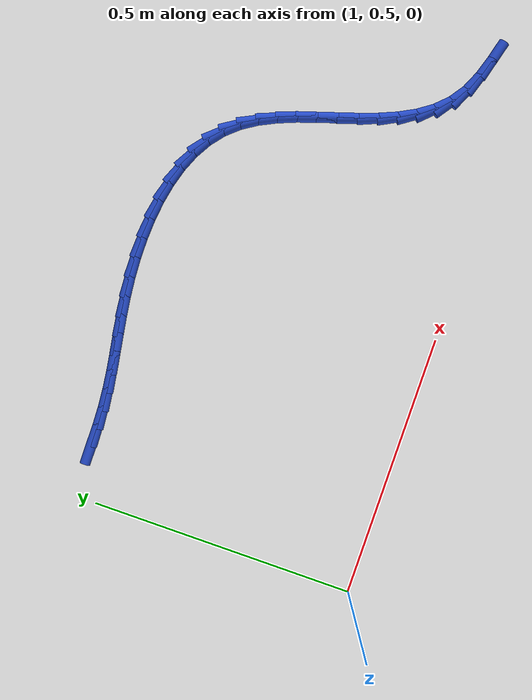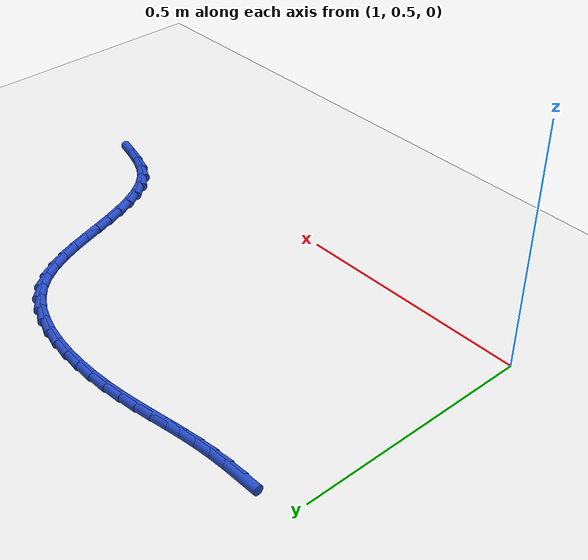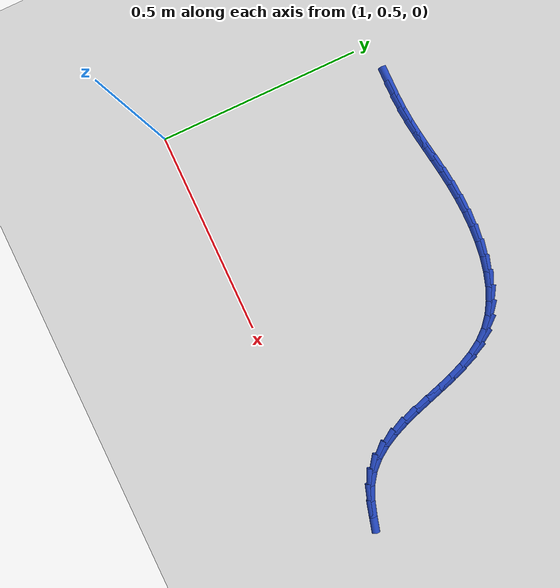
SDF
<sdf version="1.6">
 <world name="default">
  <model name="ground_plane">
   <static>1</static>
   <link name="link">
    <collision name="collision">
     <geometry><plane><normal>0 0 1</normal><size>100 100</size></plane></geometry>
     <surface><friction><ode><mu>100</mu><mu2>50</mu2></ode></friction></surface>
    </collision>
    <visual name="visual">
     <cast_shadows>0</cast_shadows>
     <geometry><plane><normal>0 0 1</normal><size>100 100</size></plane></geometry>
     <material>
      <script><uri>file://media/materials/scripts/gazebo.material</uri><name>Gazebo/WhiteGlow</name></script>
     </material>
    </visual>
   </link>
  </model>
  <model name="line">
   <link name="link_48">
    <pose>1.1049580338297793 1.0437301477455692 0.01 0 1.57 0.009042405942307612</pose>
    <collision name="collision">
     <geometry><cylinder><radius>0.01</radius><length>0.08</length></cylinder></geometry>
    </collision>
    <visual name="visual">
     <material>
      <script><name>Gazebo/Blue</name><uri>file://media/materials/scripts/gazebo.material</uri></script>
     </material>
     <geometry><cylinder><radius>0.01</radius><length>0.08</length></cylinder></geometry>
    </visual>
   </link>
   <link name="link_49">
    <pose>1.1400449679717441 1.0440474266948478 0.01 0 1.57 0.04400777409112347</pose>
    <collision name="collision">
     <geometry><cylinder><radius>0.01</radius><length>0.08</length></cylinder></geometry>
    </collision>
    <visual name="visual">
     <material>
      <script><name>Gazebo/Blue</name><uri>file://media/materials/scripts/gazebo.material</uri></script>
     </material>
     <geometry><cylinder><radius>0.01</radius><length>0.08</length></cylinder></geometry>
    </visual>
   </link>
   <link name="link_50">
    <pose>1.1749041065312948 1.0455824908957434 0.01 0 1.57 0.08690252325414222</pose>
    <collision name="collision">
     <geometry><cylinder><radius>0.01</radius><length>0.08</length></cylinder></geometry>
    </collision>
    <visual name="visual">
     <material>
      <script><name>Gazebo/Blue</name><uri>file://media/materials/scripts/gazebo.material</uri></script>
     </material>
     <geometry><cylinder><radius>0.01</radius><length>0.08</length></cylinder></geometry>
    </visual>
   </link>
   <link name="link_51">
    <pose>1.209512626546147 1.0485976526513074 0.01 0 1.57 0.12944948917517576</pose>
    <collision name="collision">
     <geometry><cylinder><radius>0.01</radius><length>0.08</length></cylinder></geometry>
    </collision>
    <visual name="visual">
     <material>
      <script><name>Gazebo/Blue</name><uri>file://media/materials/scripts/gazebo.material</uri></script>
     </material>
     <geometry><cylinder><radius>0.01</radius><length>0.08</length></cylinder></geometry>
    </visual>
   </link>
   <link name="link_52">
    <pose>1.2439416097041491 1.0530795294701196 0.01 0 1.57 0.1567974519001596</pose>
    <collision name="collision">
     <geometry><cylinder><radius>0.01</radius><length>0.08</length></cylinder></geometry>
    </collision>
    <visual name="visual">
     <material>
      <script><name>Gazebo/Blue</name><uri>file://media/materials/scripts/gazebo.material</uri></script>
     </material>
     <geometry><cylinder><radius>0.01</radius><length>0.08</length></cylinder></geometry>
    </visual>
   </link>
   <link name="link_53">
    <pose>1.2784267464284507 1.0585314638431451 0.01 0 1.57 0.16731564833161217</pose>
    <collision name="collision">
     <geometry><cylinder><radius>0.01</radius><length>0.08</length></cylinder></geometry>
    </collision>
    <visual name="visual">
     <material>
      <script><name>Gazebo/Blue</name><uri>file://media/materials/scripts/gazebo.material</uri></script>
     </material>
     <geometry><cylinder><radius>0.01</radius><length>0.08</length></cylinder></geometry>
    </visual>
   </link>
   <link name="link_54">
    <pose>1.313220375192999 1.0644079212255768 0.01 0 1.57 0.16137700495100282</pose>
    <collision name="collision">
     <geometry><cylinder><radius>0.01</radius><length>0.08</length></cylinder></geometry>
    </collision>
    <visual name="visual">
     <material>
      <script><name>Gazebo/Blue</name><uri>file://media/materials/scripts/gazebo.material</uri></script>
     </material>
     <geometry><cylinder><radius>0.01</radius><length>0.08</length></cylinder></geometry>
    </visual>
   </link>
   <link name="link_55">
    <pose>1.3485748344717436 1.0701633670726083 0.01 0 1.57 0.13978552267074787</pose>
    <collision name="collision">
     <geometry><cylinder><radius>0.01</radius><length>0.08</length></cylinder></geometry>
    </collision>
    <visual name="visual">
     <material>
      <script><name>Gazebo/Blue</name><uri>file://media/materials/scripts/gazebo.material</uri></script>
     </material>
     <geometry><cylinder><radius>0.01</radius><length>0.08</length></cylinder></geometry>
    </visual>
   </link>
   <link name="link_56">
    <pose>1.384742462738633 1.0752522668394329 0.01 0 1.57 0.1038141333362771</pose>
    <collision name="collision">
     <geometry><cylinder><radius>0.01</radius><length>0.08</length></cylinder></geometry>
    </collision>
    <visual name="visual">
     <material>
      <script><name>Gazebo/Blue</name><uri>file://media/materials/scripts/gazebo.material</uri></script>
     </material>
     <geometry><cylinder><radius>0.01</radius><length>0.08</length></cylinder></geometry>
    </visual>
   </link>
   <link name="link_57">
    <pose>1.4219698863697836 1.0791309435653766 0.01 0 1.57 0.05814658154505345</pose>
    <collision name="collision">
     <geometry><cylinder><radius>0.01</radius><length>0.08</length></cylinder></geometry>
    </collision>
    <visual name="visual">
     <material>
      <script><name>Gazebo/Blue</name><uri>file://media/materials/scripts/gazebo.material</uri></script>
     </material>
     <geometry><cylinder><radius>0.01</radius><length>0.08</length></cylinder></geometry>
    </visual>
   </link>
   <link name="link_58">
    <pose>1.4601950229192853 1.0813561129346456 0.01 0 1.57 0.007181583870500219</pose>
    <collision name="collision">
     <geometry><cylinder><radius>0.01</radius><length>0.08</length></cylinder></geometry>
    </collision>
    <visual name="visual">
     <material>
      <script><name>Gazebo/Blue</name><uri>file://media/materials/scripts/gazebo.material</uri></script>
     </material>
     <geometry><cylinder><radius>0.01</radius><length>0.08</length></cylinder></geometry>
    </visual>
   </link>
   <link name="link_59">
    <pose>1.4988958889622865 1.081634051228247 0.01 0 1.57 -0.05047436283816066</pose>
    <collision name="collision">
     <geometry><cylinder><radius>0.01</radius><length>0.08</length></cylinder></geometry>
    </collision>
    <visual name="visual">
     <material>
      <script><name>Gazebo/Blue</name><uri>file://media/materials/scripts/gazebo.material</uri></script>
     </material>
     <geometry><cylinder><radius>0.01</radius><length>0.08</length></cylinder></geometry>
    </visual>
   </link>
   <link name="link_60">
    <pose>1.5375130362401277 1.0796832183561842 0.01 0 1.57 -0.11694294829557393</pose>
    <collision name="collision">
     <geometry><cylinder><radius>0.01</radius><length>0.08</length></cylinder></geometry>
    </collision>
    <visual name="visual">
     <material>
      <script><name>Gazebo/Blue</name><uri>file://media/materials/scripts/gazebo.material</uri></script>
     </material>
     <geometry><cylinder><radius>0.01</radius><length>0.08</length></cylinder></geometry>
    </visual>
   </link>
   <link name="link_61">
    <pose>1.5754870164941495 1.075222074228462 0.01 0 1.57 -0.19474584557214875</pose>
    <collision name="collision">
     <geometry><cylinder><radius>0.01</radius><length>0.08</length></cylinder></geometry>
    </collision>
    <visual name="visual">
     <material>
      <script><name>Gazebo/Blue</name><uri>file://media/materials/scripts/gazebo.material</uri></script>
     </material>
     <geometry><cylinder><radius>0.01</radius><length>0.08</length></cylinder></geometry>
    </visual>
   </link>
   <link name="link_62">
    <pose>1.6122583814656928 1.0679690787550853 0.01 0 1.57 -0.2868276908165692</pose>
    <collision name="collision">
     <geometry><cylinder><radius>0.01</radius><length>0.08</length></cylinder></geometry>
    </collision>
    <visual name="visual">
     <material>
      <script><name>Gazebo/Blue</name><uri>file://media/materials/scripts/gazebo.material</uri></script>
     </material>
     <geometry><cylinder><radius>0.01</radius><length>0.08</length></cylinder></geometry>
    </visual>
   </link>
   <link name="link_63">
    <pose>1.6472676828960986 1.0576426918460577 0.01 0 1.57 -0.3963907209809549</pose>
    <collision name="collision">
     <geometry><cylinder><radius>0.01</radius><length>0.08</length></cylinder></geometry>
    </collision>
    <visual name="visual">
     <material>
      <script><name>Gazebo/Blue</name><uri>file://media/materials/scripts/gazebo.material</uri></script>
     </material>
     <geometry><cylinder><radius>0.01</radius><length>0.08</length></cylinder></geometry>
    </visual>
   </link>
   <link name="link_64">
    <pose>1.6799554725267076 1.0439613734113842 0.01 0 1.57 -0.5263323012996315</pose>
    <collision name="collision">
     <geometry><cylinder><radius>0.01</radius><length>0.08</length></cylinder></geometry>
    </collision>
    <visual name="visual">
     <material>
      <script><name>Gazebo/Blue</name><uri>file://media/materials/scripts/gazebo.material</uri></script>
     </material>
     <geometry><cylinder><radius>0.01</radius><length>0.08</length></cylinder></geometry>
    </visual>
   </link>
   <link name="link_65">
    <pose>1.70976230209886 1.0266435833610683 0.01 0 1.57 -0.6780315437875424</pose>
    <collision name="collision">
     <geometry><cylinder><radius>0.01</radius><length>0.08</length></cylinder></geometry>
    </collision>
    <visual name="visual">
     <material>
      <script><name>Gazebo/Blue</name><uri>file://media/materials/scripts/gazebo.material</uri></script>
     </material>
     <geometry><cylinder><radius>0.01</radius><length>0.08</length></cylinder></geometry>
    </visual>
   </link>
   <link name="link_66">
    <pose>1.7361287233538978 1.005407781605115 0.01 0 1.57 -0.8470419272122244</pose>
    <collision name="collision">
     <geometry><cylinder><radius>0.01</radius><length>0.08</length></cylinder></geometry>
    </collision>
    <visual name="visual">
     <material>
      <script><name>Gazebo/Blue</name><uri>file://media/materials/scripts/gazebo.material</uri></script>
     </material>
     <geometry><cylinder><radius>0.01</radius><length>0.08</length></cylinder></geometry>
    </visual>
   </link>
   <link name="link_67">
    <pose>1.7585607022753573 0.9800245542515559 0.01 0 1.57 -0.9990008211919433</pose>
    <collision name="collision">
     <geometry><cylinder><radius>0.01</radius><length>0.08</length></cylinder></geometry>
    </collision>
    <visual name="visual">
     <material>
      <script><name>Gazebo/Blue</name><uri>file://media/materials/scripts/gazebo.material</uri></script>
     </material>
     <geometry><cylinder><radius>0.01</radius><length>0.08</length></cylinder></geometry>
    </visual>
   </link>
   <link name="link_68">
    <pose>1.7773225668048496 0.9508687980948362 0.01 0 1.57 -1.1130805498657297</pose>
    <collision name="collision">
     <geometry><cylinder><radius>0.01</radius><length>0.08</length></cylinder></geometry>
    </collision>
    <visual name="visual">
     <material>
      <script><name>Gazebo/Blue</name><uri>file://media/materials/scripts/gazebo.material</uri></script>
     </material>
     <geometry><cylinder><radius>0.01</radius><length>0.08</length></cylinder></geometry>
    </visual>
   </link>
   <link name="link_69">
    <pose>1.7931669254652318 0.9187045027235152 0.01 0 1.57 -1.1921306621814383</pose>
    <collision name="collision">
     <geometry><cylinder><radius>0.01</radius><length>0.08</length></cylinder></geometry>
    </collision>
    <visual name="visual">
     <material>
      <script><name>Gazebo/Blue</name><uri>file://media/materials/scripts/gazebo.material</uri></script>
     </material>
     <geometry><cylinder><radius>0.01</radius><length>0.08</length></cylinder></geometry>
    </visual>
   </link>
   <link name="link_70">
    <pose>1.8068544806407896 0.8843021074259336 0.01 0 1.57 -1.2406698823326725</pose>
    <collision name="collision">
     <geometry><cylinder><radius>0.01</radius><length>0.08</length></cylinder></geometry>
    </collision>
    <visual name="visual">
     <material>
      <script><name>Gazebo/Blue</name><uri>file://media/materials/scripts/gazebo.material</uri></script>
     </material>
     <geometry><cylinder><radius>0.01</radius><length>0.08</length></cylinder></geometry>
    </visual>
   </link>
   <link name="link_71">
    <pose>1.8191459347158088 0.848432051490432 0.01 0 1.57 -1.2622218312819644</pose>
    <collision name="collision">
     <geometry><cylinder><radius>0.01</radius><length>0.08</length></cylinder></geometry>
    </collision>
    <visual name="visual">
     <material>
      <script><name>Gazebo/Blue</name><uri>file://media/materials/scripts/gazebo.material</uri></script>
     </material>
     <geometry><cylinder><radius>0.01</radius><length>0.08</length></cylinder></geometry>
    </visual>
   </link>
   <link name="link_72">
    <pose>1.8308019900745742 0.8118647742053492 0.01 0 1.57 -1.2585288191707322</pose>
    <collision name="collision">
     <geometry><cylinder><radius>0.01</radius><length>0.08</length></cylinder></geometry>
    </collision>
    <visual name="visual">
     <material>
      <script><name>Gazebo/Blue</name><uri>file://media/materials/scripts/gazebo.material</uri></script>
     </material>
     <geometry><cylinder><radius>0.01</radius><length>0.08</length></cylinder></geometry>
    </visual>
   </link>
   <link name="link_73">
    <pose>1.8425833491013708 0.7753707148590262 0.01 0 1.57 -1.2293883715992928</pose>
    <collision name="collision">
     <geometry><cylinder><radius>0.01</radius><length>0.08</length></cylinder></geometry>
    </collision>
    <visual name="visual">
     <material>
      <script><name>Gazebo/Blue</name><uri>file://media/materials/scripts/gazebo.material</uri></script>
     </material>
     <geometry><cylinder><radius>0.01</radius><length>0.08</length></cylinder></geometry>
    </visual>
   </link>
   <link name="link_74">
    <pose>1.8552507141804846 0.739720312739803 0.01 0 1.57 -1.1726982728731365</pose>
    <collision name="collision">
     <geometry><cylinder><radius>0.01</radius><length>0.08</length></cylinder></geometry>
    </collision>
    <visual name="visual">
     <material>
      <script><name>Gazebo/Blue</name><uri>file://media/materials/scripts/gazebo.material</uri></script>
     </material>
     <geometry><cylinder><radius>0.01</radius><length>0.08</length></cylinder></geometry>
    </visual>
   </link>
   <link name="link_75">
    <pose>1.8695647876961998 0.7056840071360196 0.01 0 1.57 -1.084769470079153</pose>
    <collision name="collision">
     <geometry><cylinder><radius>0.01</radius><length>0.08</length></cylinder></geometry>
    </collision>
    <visual name="visual">
     <material>
      <script><name>Gazebo/Blue</name><uri>file://media/materials/scripts/gazebo.material</uri></script>
     </material>
     <geometry><cylinder><radius>0.01</radius><length>0.08</length></cylinder></geometry>
    </visual>
   </link>
   <link name="link_76">
    <pose>1.886286272032802 0.6740322373360166 0.01 0 1.57 -0.961441399299005</pose>
    <collision name="collision">
     <geometry><cylinder><radius>0.01</radius><length>0.08</length></cylinder></geometry>
    </collision>
    <visual name="visual">
     <material>
      <script><name>Gazebo/Blue</name><uri>file://media/materials/scripts/gazebo.material</uri></script>
     </material>
     <geometry><cylinder><radius>0.01</radius><length>0.08</length></cylinder></geometry>
    </visual>
   </link>
   <link name="link_77">
    <pose>1.906175869574577 0.6455354426281337 0.01 0 1.57 -0.8009573625546573</pose>
    <collision name="collision">
     <geometry><cylinder><radius>0.01</radius><length>0.08</length></cylinder></geometry>
    </collision>
    <visual name="visual">
     <material>
      <script><name>Gazebo/Blue</name><uri>file://media/materials/scripts/gazebo.material</uri></script>
     </material>
     <geometry><cylinder><radius>0.01</radius><length>0.08</length></cylinder></geometry>
    </visual>
   </link>
   <link name="link_78">
    <pose>1.9299942827058085 0.6209640623007109 0.01 0 1.57 -0.6088465043174918</pose>
    <collision name="collision">
     <geometry><cylinder><radius>0.01</radius><length>0.08</length></cylinder></geometry>
    </collision>
    <visual name="visual">
     <material>
      <script><name>Gazebo/Blue</name><uri>file://media/materials/scripts/gazebo.material</uri></script>
     </material>
     <geometry><cylinder><radius>0.01</radius><length>0.08</length></cylinder></geometry>
    </visual>
   </link>
   <link name="link_79">
    <pose>1.958502020190623 0.6010883742030791 0.01 0 1.57 -0.42129548554073687</pose>
    <collision name="collision">
     <geometry><cylinder><radius>0.01</radius><length>0.08</length></cylinder></geometry>
    </collision>
    <visual name="visual">
     <material>
      <script><name>Gazebo/Blue</name><uri>file://media/materials/scripts/gazebo.material</uri></script>
     </material>
     <geometry><cylinder><radius>0.01</radius><length>0.08</length></cylinder></geometry>
    </visual>
   </link>
   <link name="link_80">
    <pose>1.9918296012513237 0.5861533757200033 0.01 0 1.57 -0.30577700918989764</pose>
    <collision name="collision">
     <geometry><cylinder><radius>0.01</radius><length>0.08</length></cylinder></geometry>
    </collision>
    <visual name="visual">
     <material>
      <script><name>Gazebo/Blue</name><uri>file://media/materials/scripts/gazebo.material</uri></script>
     </material>
     <geometry><cylinder><radius>0.01</radius><length>0.08</length></cylinder></geometry>
    </visual>
   </link>
   <link name="link_81">
    <pose>2.0280768937019835 0.5747109226136045 0.01 0 1.57 -0.25831131023960224</pose>
    <collision name="collision">
     <geometry><cylinder><radius>0.01</radius><length>0.08</length></cylinder></geometry>
    </collision>
    <visual name="visual">
     <material>
      <script><name>Gazebo/Blue</name><uri>file://media/materials/scripts/gazebo.material</uri></script>
     </material>
     <geometry><cylinder><radius>0.01</radius><length>0.08</length></cylinder></geometry>
    </visual>
   </link>
  </model>
 </world>
</sdf>
